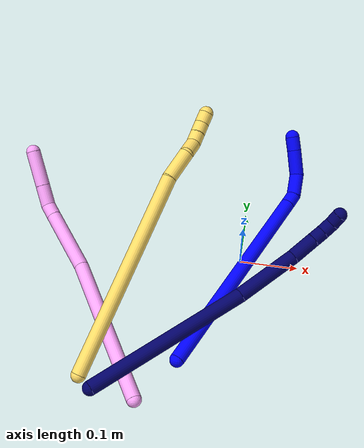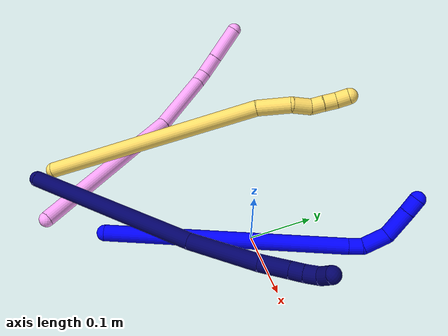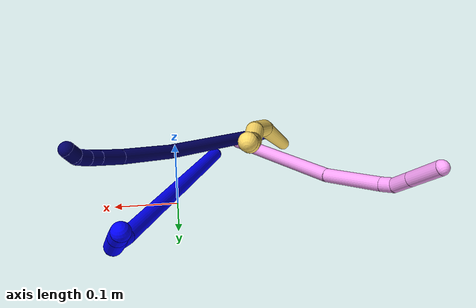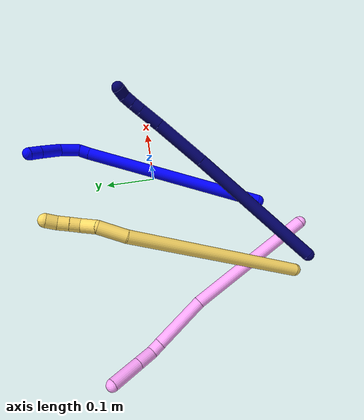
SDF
<sdf version="1.7">
 <world name="default">
  <model name="1">
   <static>0</static>
   <link name="1">
    <collision name="collision-cylinder-e_1_1_4">
     <pose>0.075033 0.143788 0.088297 -1.02009 0.418424 -0.236443</pose>
     <geometry><cylinder><radius>0.0125</radius><length>0.369331</length></cylinder></geometry>
     <surface>
      <friction><ode><mu>1.16</mu><mu2>1.16</mu2><slip1>0</slip1><slip2>0</slip2></ode></friction>
      <contact><ode><kp>1e+06</kp><kd>1</kd><max_vel>0</max_vel><min_depth>0.001</min_depth></ode></contact>
     </surface>
    </collision>
    <visual name="visual-cylinder-e_1_1_4">
     <pose>0.075033 0.143788 0.088297 -1.02009 0.418424 -0.236443</pose>
     <geometry><cylinder><radius>0.0125</radius><length>0.369331</length></cylinder></geometry>
     <material><ambient>0 0 1 1</ambient></material>
    </visual>
    <collision name="collision-cylinder-e_2_4_5">
     <pose>0.15447 0.295183 0.182902 -0.878465 0.419146 -0.199206</pose>
     <geometry><cylinder><radius>0.0125</radius><length>0.021638</length></cylinder></geometry>
     <surface>
      <friction><ode><mu>1.16</mu><mu2>1.16</mu2><slip1>0</slip1><slip2>0</slip2></ode></friction>
      <contact><ode><kp>1e+06</kp><kd>1</kd><max_vel>0</max_vel><min_depth>0.001</min_depth></ode></contact>
     </surface>
    </collision>
    <visual name="visual-cylinder-e_2_4_5">
     <pose>0.15447 0.295183 0.182902 -0.878465 0.419146 -0.199206</pose>
     <geometry><cylinder><radius>0.0125</radius><length>0.021638</length></cylinder></geometry>
     <material><ambient>0 0 1 1</ambient></material>
    </visual>
    <collision name="collision-cylinder-e_3_5_6">
     <pose>0.158737 0.316318 0.203863 -0.745521 -0.006815 0.002665</pose>
     <geometry><cylinder><radius>0.0125</radius><length>0.039886</length></cylinder></geometry>
     <surface>
      <friction><ode><mu>1.16</mu><mu2>1.16</mu2><slip1>0</slip1><slip2>0</slip2></ode></friction>
      <contact><ode><kp>1e+06</kp><kd>1</kd><max_vel>0</max_vel><min_depth>0.001</min_depth></ode></contact>
     </surface>
    </collision>
    <visual name="visual-cylinder-e_3_5_6">
     <pose>0.158737 0.316318 0.203863 -0.745521 -0.006815 0.002665</pose>
     <geometry><cylinder><radius>0.0125</radius><length>0.039886</length></cylinder></geometry>
     <material><ambient>0 0 1 1</ambient></material>
    </visual>
    <collision name="collision-cylinder-e_4_6_7">
     <pose>0.151721 0.337924 0.238417 -0.385568 -0.310004 0.060986</pose>
     <geometry><cylinder><radius>0.0125</radius><length>0.045107</length></cylinder></geometry>
     <surface>
      <friction><ode><mu>1.16</mu><mu2>1.16</mu2><slip1>0</slip1><slip2>0</slip2></ode></friction>
      <contact><ode><kp>1e+06</kp><kd>1</kd><max_vel>0</max_vel><min_depth>0.001</min_depth></ode></contact>
     </surface>
    </collision>
    <visual name="visual-cylinder-e_4_6_7">
     <pose>0.151721 0.337924 0.238417 -0.385568 -0.310004 0.060986</pose>
     <geometry><cylinder><radius>0.0125</radius><length>0.045107</length></cylinder></geometry>
     <material><ambient>0 0 1 1</ambient></material>
    </visual>
    <collision name="collision-cylinder-e_5_7_2">
     <pose>0.140802 0.350246 0.268813 -0.38432 -0.342714 0.067313</pose>
     <geometry><cylinder><radius>0.0125</radius><length>0.024038</length></cylinder></geometry>
     <surface>
      <friction><ode><mu>1.16</mu><mu2>1.16</mu2><slip1>0</slip1><slip2>0</slip2></ode></friction>
      <contact><ode><kp>1e+06</kp><kd>1</kd><max_vel>0</max_vel><min_depth>0.001</min_depth></ode></contact>
     </surface>
    </collision>
    <visual name="visual-cylinder-e_5_7_2">
     <pose>0.140802 0.350246 0.268813 -0.38432 -0.342714 0.067313</pose>
     <geometry><cylinder><radius>0.0125</radius><length>0.024038</length></cylinder></geometry>
     <material><ambient>0 0 1 1</ambient></material>
    </visual>
    <collision name="collision-sphere-2">
     <pose>0.136763 0.35449 0.279307 0 -0 0</pose>
     <geometry><sphere><radius>0.0125</radius></sphere></geometry>
     <surface>
      <friction><ode><mu>1.16</mu><mu2>1.16</mu2><slip1>0</slip1><slip2>0</slip2></ode></friction>
      <contact><ode><kp>1e+06</kp><kd>1</kd><max_vel>0</max_vel><min_depth>0.001</min_depth></ode></contact>
     </surface>
    </collision>
    <visual name="visual-sphere-2">
     <pose>0.136763 0.35449 0.279307 0 -0 0</pose>
     <geometry><sphere><radius>0.0125</radius></sphere></geometry>
     <material><ambient>0 0 1 1</ambient></material>
    </visual>
    <collision name="collision-sphere-7">
     <pose>0.144841 0.346002 0.258319 0 -0 0</pose>
     <geometry><sphere><radius>0.0125</radius></sphere></geometry>
     <surface>
      <friction><ode><mu>1.16</mu><mu2>1.16</mu2><slip1>0</slip1><slip2>0</slip2></ode></friction>
      <contact><ode><kp>1e+06</kp><kd>1</kd><max_vel>0</max_vel><min_depth>0.001</min_depth></ode></contact>
     </surface>
    </collision>
    <visual name="visual-sphere-7">
     <pose>0.144841 0.346002 0.258319 0 -0 0</pose>
     <geometry><sphere><radius>0.0125</radius></sphere></geometry>
     <material><ambient>0 0 1 1</ambient></material>
    </visual>
    <collision name="collision-sphere-6">
     <pose>0.158601 0.329847 0.218515 0 -0 0</pose>
     <geometry><sphere><radius>0.0125</radius></sphere></geometry>
     <surface>
      <friction><ode><mu>1.16</mu><mu2>1.16</mu2><slip1>0</slip1><slip2>0</slip2></ode></friction>
      <contact><ode><kp>1e+06</kp><kd>1</kd><max_vel>0</max_vel><min_depth>0.001</min_depth></ode></contact>
     </surface>
    </collision>
    <visual name="visual-sphere-6">
     <pose>0.158601 0.329847 0.218515 0 -0 0</pose>
     <geometry><sphere><radius>0.0125</radius></sphere></geometry>
     <material><ambient>0 0 1 1</ambient></material>
    </visual>
    <collision name="collision-sphere-5">
     <pose>0.158873 0.30279 0.18921 0 -0 0</pose>
     <geometry><sphere><radius>0.0125</radius></sphere></geometry>
     <surface>
      <friction><ode><mu>1.16</mu><mu2>1.16</mu2><slip1>0</slip1><slip2>0</slip2></ode></friction>
      <contact><ode><kp>1e+06</kp><kd>1</kd><max_vel>0</max_vel><min_depth>0.001</min_depth></ode></contact>
     </surface>
    </collision>
    <visual name="visual-sphere-5">
     <pose>0.158873 0.30279 0.18921 0 -0 0</pose>
     <geometry><sphere><radius>0.0125</radius></sphere></geometry>
     <material><ambient>0 0 1 1</ambient></material>
    </visual>
    <collision name="collision-sphere-1">
     <geometry><sphere><radius>0.0125</radius></sphere></geometry>
     <surface>
      <friction><ode><mu>1.16</mu><mu2>1.16</mu2><slip1>0</slip1><slip2>0</slip2></ode></friction>
      <contact><ode><kp>1e+06</kp><kd>1</kd><max_vel>0</max_vel><min_depth>0.001</min_depth></ode></contact>
     </surface>
    </collision>
    <visual name="visual-sphere-1">
     <geometry><sphere><radius>0.0125</radius></sphere></geometry>
     <material><ambient>0 0 1 1</ambient></material>
    </visual>
    <collision name="collision-sphere-4">
     <pose>0.150067 0.287576 0.176593 0 -0 0</pose>
     <geometry><sphere><radius>0.0125</radius></sphere></geometry>
     <surface>
      <friction><ode><mu>1.16</mu><mu2>1.16</mu2><slip1>0</slip1><slip2>0</slip2></ode></friction>
      <contact><ode><kp>1e+06</kp><kd>1</kd><max_vel>0</max_vel><min_depth>0.001</min_depth></ode></contact>
     </surface>
    </collision>
    <visual name="visual-sphere-4">
     <pose>0.150067 0.287576 0.176593 0 -0 0</pose>
     <geometry><sphere><radius>0.0125</radius></sphere></geometry>
     <material><ambient>0 0 1 1</ambient></material>
    </visual>
    <inertial>
     <pose>0.095229 0.191542 0.123831 0 -0 0</pose>
     <mass>0.5</mass>
     <inertia>
      <ixx>0.002871</ixx>
      <ixy>0</ixy>
      <ixz>0</ixz>
      <iyy>0.001628</iyy>
      <iyz>0</iyz>
      <izz>-0.004977</izz>
     </inertia>
    </inertial>
   </link>
   <pose>-0.078918 -0.209574 0.011946 -0.494642 0.124931 0.002539</pose>
  </model>
  <model name="4">
   <static>0</static>
   <link name="4">
    <collision name="collision-cylinder-e_1_1_4">
     <pose>-0.076999 -0.005274 0.108368 0.048633 -0.6172 -0.015506</pose>
     <geometry><cylinder><radius>0.0125</radius><length>0.266085</length></cylinder></geometry>
     <surface>
      <friction><ode><mu>1.16</mu><mu2>1.16</mu2><slip1>0</slip1><slip2>0</slip2></ode></friction>
      <contact><ode><kp>1e+06</kp><kd>1</kd><max_vel>0</max_vel><min_depth>0.001</min_depth></ode></contact>
     </surface>
    </collision>
    <visual name="visual-cylinder-e_1_1_4">
     <pose>-0.076999 -0.005274 0.108368 0.048633 -0.6172 -0.015506</pose>
     <geometry><cylinder><radius>0.0125</radius><length>0.266085</length></cylinder></geometry>
     <material><ambient>1 0.65098 0.996078 1</ambient></material>
    </visual>
    <collision name="collision-cylinder-e_2_4_5">
     <pose>-0.193689 -0.012283 0.256062 0.044064 -0.789537 -0.018361</pose>
     <geometry><cylinder><radius>0.0125</radius><length>0.111803</length></cylinder></geometry>
     <surface>
      <friction><ode><mu>1.16</mu><mu2>1.16</mu2><slip1>0</slip1><slip2>0</slip2></ode></friction>
      <contact><ode><kp>1e+06</kp><kd>1</kd><max_vel>0</max_vel><min_depth>0.001</min_depth></ode></contact>
     </surface>
    </collision>
    <visual name="visual-cylinder-e_2_4_5">
     <pose>-0.193689 -0.012283 0.256062 0.044064 -0.789537 -0.018361</pose>
     <geometry><cylinder><radius>0.0125</radius><length>0.111803</length></cylinder></geometry>
     <material><ambient>1 0.65098 0.996078 1</ambient></material>
    </visual>
    <collision name="collision-cylinder-e_3_5_6">
     <pose>-0.242052 -0.014981 0.303131 0.123864 -0.838082 -0.055229</pose>
     <geometry><cylinder><radius>0.0125</radius><length>0.023329</length></cylinder></geometry>
     <surface>
      <friction><ode><mu>1.16</mu><mu2>1.16</mu2><slip1>0</slip1><slip2>0</slip2></ode></friction>
      <contact><ode><kp>1e+06</kp><kd>1</kd><max_vel>0</max_vel><min_depth>0.001</min_depth></ode></contact>
     </surface>
    </collision>
    <visual name="visual-cylinder-e_3_5_6">
     <pose>-0.242052 -0.014981 0.303131 0.123864 -0.838082 -0.055229</pose>
     <geometry><cylinder><radius>0.0125</radius><length>0.023329</length></cylinder></geometry>
     <material><ambient>1 0.65098 0.996078 1</ambient></material>
    </visual>
    <collision name="collision-cylinder-e_4_6_7">
     <pose>-0.264781 -0.024219 0.319273 0.777838 -0.872897 -0.377738</pose>
     <geometry><cylinder><radius>0.0125</radius><length>0.036696</length></cylinder></geometry>
     <surface>
      <friction><ode><mu>1.16</mu><mu2>1.16</mu2><slip1>0</slip1><slip2>0</slip2></ode></friction>
      <contact><ode><kp>1e+06</kp><kd>1</kd><max_vel>0</max_vel><min_depth>0.001</min_depth></ode></contact>
     </surface>
    </collision>
    <visual name="visual-cylinder-e_4_6_7">
     <pose>-0.264781 -0.024219 0.319273 0.777838 -0.872897 -0.377738</pose>
     <geometry><cylinder><radius>0.0125</radius><length>0.036696</length></cylinder></geometry>
     <material><ambient>1 0.65098 0.996078 1</ambient></material>
    </visual>
    <collision name="collision-cylinder-e_5_7_2">
     <pose>-0.30264 -0.046511 0.341841 0.780117 -0.873658 -0.379303</pose>
     <geometry><cylinder><radius>0.0125</radius><length>0.062087</length></cylinder></geometry>
     <surface>
      <friction><ode><mu>1.16</mu><mu2>1.16</mu2><slip1>0</slip1><slip2>0</slip2></ode></friction>
      <contact><ode><kp>1e+06</kp><kd>1</kd><max_vel>0</max_vel><min_depth>0.001</min_depth></ode></contact>
     </surface>
    </collision>
    <visual name="visual-cylinder-e_5_7_2">
     <pose>-0.30264 -0.046511 0.341841 0.780117 -0.873658 -0.379303</pose>
     <geometry><cylinder><radius>0.0125</radius><length>0.062087</length></cylinder></geometry>
     <material><ambient>1 0.65098 0.996078 1</ambient></material>
    </visual>
    <collision name="collision-sphere-2">
     <pose>-0.32644 -0.06053 0.356008 0 -0 0</pose>
     <geometry><sphere><radius>0.0125</radius></sphere></geometry>
     <surface>
      <friction><ode><mu>1.16</mu><mu2>1.16</mu2><slip1>0</slip1><slip2>0</slip2></ode></friction>
      <contact><ode><kp>1e+06</kp><kd>1</kd><max_vel>0</max_vel><min_depth>0.001</min_depth></ode></contact>
     </surface>
    </collision>
    <visual name="visual-sphere-2">
     <pose>-0.32644 -0.06053 0.356008 0 -0 0</pose>
     <geometry><sphere><radius>0.0125</radius></sphere></geometry>
     <material><ambient>1 0.65098 0.996078 1</ambient></material>
    </visual>
    <collision name="collision-sphere-7">
     <pose>-0.278839 -0.032493 0.327673 0 -0 0</pose>
     <geometry><sphere><radius>0.0125</radius></sphere></geometry>
     <surface>
      <friction><ode><mu>1.16</mu><mu2>1.16</mu2><slip1>0</slip1><slip2>0</slip2></ode></friction>
      <contact><ode><kp>1e+06</kp><kd>1</kd><max_vel>0</max_vel><min_depth>0.001</min_depth></ode></contact>
     </surface>
    </collision>
    <visual name="visual-sphere-7">
     <pose>-0.278839 -0.032493 0.327673 0 -0 0</pose>
     <geometry><sphere><radius>0.0125</radius></sphere></geometry>
     <material><ambient>1 0.65098 0.996078 1</ambient></material>
    </visual>
    <collision name="collision-sphere-6">
     <pose>-0.250723 -0.015945 0.310873 0 -0 0</pose>
     <geometry><sphere><radius>0.0125</radius></sphere></geometry>
     <surface>
      <friction><ode><mu>1.16</mu><mu2>1.16</mu2><slip1>0</slip1><slip2>0</slip2></ode></friction>
      <contact><ode><kp>1e+06</kp><kd>1</kd><max_vel>0</max_vel><min_depth>0.001</min_depth></ode></contact>
     </surface>
    </collision>
    <visual name="visual-sphere-6">
     <pose>-0.250723 -0.015945 0.310873 0 -0 0</pose>
     <geometry><sphere><radius>0.0125</radius></sphere></geometry>
     <material><ambient>1 0.65098 0.996078 1</ambient></material>
    </visual>
    <collision name="collision-sphere-5">
     <pose>-0.233381 -0.014017 0.295388 0 -0 0</pose>
     <geometry><sphere><radius>0.0125</radius></sphere></geometry>
     <surface>
      <friction><ode><mu>1.16</mu><mu2>1.16</mu2><slip1>0</slip1><slip2>0</slip2></ode></friction>
      <contact><ode><kp>1e+06</kp><kd>1</kd><max_vel>0</max_vel><min_depth>0.001</min_depth></ode></contact>
     </surface>
    </collision>
    <visual name="visual-sphere-5">
     <pose>-0.233381 -0.014017 0.295388 0 -0 0</pose>
     <geometry><sphere><radius>0.0125</radius></sphere></geometry>
     <material><ambient>1 0.65098 0.996078 1</ambient></material>
    </visual>
    <collision name="collision-sphere-1">
     <geometry><sphere><radius>0.0125</radius></sphere></geometry>
     <surface>
      <friction><ode><mu>1.16</mu><mu2>1.16</mu2><slip1>0</slip1><slip2>0</slip2></ode></friction>
      <contact><ode><kp>1e+06</kp><kd>1</kd><max_vel>0</max_vel><min_depth>0.001</min_depth></ode></contact>
     </surface>
    </collision>
    <visual name="visual-sphere-1">
     <geometry><sphere><radius>0.0125</radius></sphere></geometry>
     <material><ambient>1 0.65098 0.996078 1</ambient></material>
    </visual>
    <collision name="collision-sphere-4">
     <pose>-0.153998 -0.010549 0.216736 0 -0 0</pose>
     <geometry><sphere><radius>0.0125</radius></sphere></geometry>
     <surface>
      <friction><ode><mu>1.16</mu><mu2>1.16</mu2><slip1>0</slip1><slip2>0</slip2></ode></friction>
      <contact><ode><kp>1e+06</kp><kd>1</kd><max_vel>0</max_vel><min_depth>0.001</min_depth></ode></contact>
     </surface>
    </collision>
    <visual name="visual-sphere-4">
     <pose>-0.153998 -0.010549 0.216736 0 -0 0</pose>
     <geometry><sphere><radius>0.0125</radius></sphere></geometry>
     <material><ambient>1 0.65098 0.996078 1</ambient></material>
    </visual>
    <inertial>
     <pose>-0.152593 -0.013805 0.194951 0 -0 0</pose>
     <mass>0.5</mass>
     <inertia>
      <ixx>0.001338</ixx>
      <ixy>0</ixy>
      <ixz>0</ixz>
      <iyy>0.001693</iyy>
      <iyz>0</iyz>
      <izz>0.00113</izz>
     </inertia>
    </inertial>
   </link>
   <pose>-0.135562 -0.287977 0.011489 -2.1194 0.594149 -0.248176</pose>
  </model>
  <model name="5">
   <static>0</static>
   <link name="5">
    <collision name="collision-cylinder-e_1_1_4">
     <pose>0.016371 0.110228 -0.138809 -2.47046 0.092101 -0.26275</pose>
     <geometry><cylinder><radius>0.0125</radius><length>0.356012</length></cylinder></geometry>
     <surface>
      <friction><ode><mu>1.16</mu><mu2>1.16</mu2><slip1>0</slip1><slip2>0</slip2></ode></friction>
      <contact><ode><kp>1e+06</kp><kd>1</kd><max_vel>0</max_vel><min_depth>0.001</min_depth></ode></contact>
     </surface>
    </collision>
    <visual name="visual-cylinder-e_1_1_4">
     <pose>0.016371 0.110228 -0.138809 -2.47046 0.092101 -0.26275</pose>
     <geometry><cylinder><radius>0.0125</radius><length>0.356012</length></cylinder></geometry>
     <material><ambient>1 0.858824 0.4 1</ambient></material>
    </visual>
    <collision name="collision-cylinder-e_2_4_5">
     <pose>0.038517 0.233077 -0.30019 -2.63173 0.219681 -0.800682</pose>
     <geometry><cylinder><radius>0.0125</radius><length>0.052995</length></cylinder></geometry>
     <surface>
      <friction><ode><mu>1.16</mu><mu2>1.16</mu2><slip1>0</slip1><slip2>0</slip2></ode></friction>
      <contact><ode><kp>1e+06</kp><kd>1</kd><max_vel>0</max_vel><min_depth>0.001</min_depth></ode></contact>
     </surface>
    </collision>
    <visual name="visual-cylinder-e_2_4_5">
     <pose>0.038517 0.233077 -0.30019 -2.63173 0.219681 -0.800682</pose>
     <geometry><cylinder><radius>0.0125</radius><length>0.052995</length></cylinder></geometry>
     <material><ambient>1 0.858824 0.4 1</ambient></material>
    </visual>
    <collision name="collision-cylinder-e_3_5_6">
     <pose>0.044945 0.246969 -0.337915 -3.05792 0.04297 -0.948504</pose>
     <geometry><cylinder><radius>0.0125</radius><length>0.030442</length></cylinder></geometry>
     <surface>
      <friction><ode><mu>1.16</mu><mu2>1.16</mu2><slip1>0</slip1><slip2>0</slip2></ode></friction>
      <contact><ode><kp>1e+06</kp><kd>1</kd><max_vel>0</max_vel><min_depth>0.001</min_depth></ode></contact>
     </surface>
    </collision>
    <visual name="visual-cylinder-e_3_5_6">
     <pose>0.044945 0.246969 -0.337915 -3.05792 0.04297 -0.948504</pose>
     <geometry><cylinder><radius>0.0125</radius><length>0.030442</length></cylinder></geometry>
     <material><ambient>1 0.858824 0.4 1</ambient></material>
    </visual>
    <collision name="collision-cylinder-e_4_6_7">
     <pose>0.04587 0.253556 -0.361663 -2.58768 0.026806 -0.094236</pose>
     <geometry><cylinder><radius>0.0125</radius><length>0.020218</length></cylinder></geometry>
     <surface>
      <friction><ode><mu>1.16</mu><mu2>1.16</mu2><slip1>0</slip1><slip2>0</slip2></ode></friction>
      <contact><ode><kp>1e+06</kp><kd>1</kd><max_vel>0</max_vel><min_depth>0.001</min_depth></ode></contact>
     </surface>
    </collision>
    <visual name="visual-cylinder-e_4_6_7">
     <pose>0.04587 0.253556 -0.361663 -2.58768 0.026806 -0.094236</pose>
     <geometry><cylinder><radius>0.0125</radius><length>0.020218</length></cylinder></geometry>
     <material><ambient>1 0.858824 0.4 1</ambient></material>
    </visual>
    <collision name="collision-cylinder-e_5_7_8">
     <pose>0.046236 0.263699 -0.379066 -2.64027 0.009485 -0.03704</pose>
     <geometry><cylinder><radius>0.0125</radius><length>0.020089</length></cylinder></geometry>
     <surface>
      <friction><ode><mu>1.16</mu><mu2>1.16</mu2><slip1>0</slip1><slip2>0</slip2></ode></friction>
      <contact><ode><kp>1e+06</kp><kd>1</kd><max_vel>0</max_vel><min_depth>0.001</min_depth></ode></contact>
     </surface>
    </collision>
    <visual name="visual-cylinder-e_5_7_8">
     <pose>0.046236 0.263699 -0.379066 -2.64027 0.009485 -0.03704</pose>
     <geometry><cylinder><radius>0.0125</radius><length>0.020089</length></cylinder></geometry>
     <material><ambient>1 0.858824 0.4 1</ambient></material>
    </visual>
    <collision name="collision-cylinder-e_6_8_2">
     <pose>0.047175 0.275075 -0.395545 -2.43486 0.083393 -0.225266</pose>
     <geometry><cylinder><radius>0.0125</radius><length>0.020243</length></cylinder></geometry>
     <surface>
      <friction><ode><mu>1.16</mu><mu2>1.16</mu2><slip1>0</slip1><slip2>0</slip2></ode></friction>
      <contact><ode><kp>1e+06</kp><kd>1</kd><max_vel>0</max_vel><min_depth>0.001</min_depth></ode></contact>
     </surface>
    </collision>
    <visual name="visual-cylinder-e_6_8_2">
     <pose>0.047175 0.275075 -0.395545 -2.43486 0.083393 -0.225266</pose>
     <geometry><cylinder><radius>0.0125</radius><length>0.020243</length></cylinder></geometry>
     <material><ambient>1 0.858824 0.4 1</ambient></material>
    </visual>
    <collision name="collision-sphere-2">
     <pose>0.048018 0.281625 -0.403216 0 -0 0</pose>
     <geometry><sphere><radius>0.0125</radius></sphere></geometry>
     <surface>
      <friction><ode><mu>1.16</mu><mu2>1.16</mu2><slip1>0</slip1><slip2>0</slip2></ode></friction>
      <contact><ode><kp>1e+06</kp><kd>1</kd><max_vel>0</max_vel><min_depth>0.001</min_depth></ode></contact>
     </surface>
    </collision>
    <visual name="visual-sphere-2">
     <pose>0.048018 0.281625 -0.403216 0 -0 0</pose>
     <geometry><sphere><radius>0.0125</radius></sphere></geometry>
     <material><ambient>1 0.858824 0.4 1</ambient></material>
    </visual>
    <collision name="collision-sphere-4">
     <pose>0.032743 0.220455 -0.277618 0 -0 0</pose>
     <geometry><sphere><radius>0.0125</radius></sphere></geometry>
     <surface>
      <friction><ode><mu>1.16</mu><mu2>1.16</mu2><slip1>0</slip1><slip2>0</slip2></ode></friction>
      <contact><ode><kp>1e+06</kp><kd>1</kd><max_vel>0</max_vel><min_depth>0.001</min_depth></ode></contact>
     </surface>
    </collision>
    <visual name="visual-sphere-4">
     <pose>0.032743 0.220455 -0.277618 0 -0 0</pose>
     <geometry><sphere><radius>0.0125</radius></sphere></geometry>
     <material><ambient>1 0.858824 0.4 1</ambient></material>
    </visual>
    <collision name="collision-sphere-1">
     <geometry><sphere><radius>0.0125</radius></sphere></geometry>
     <surface>
      <friction><ode><mu>1.16</mu><mu2>1.16</mu2><slip1>0</slip1><slip2>0</slip2></ode></friction>
      <contact><ode><kp>1e+06</kp><kd>1</kd><max_vel>0</max_vel><min_depth>0.001</min_depth></ode></contact>
     </surface>
    </collision>
    <visual name="visual-sphere-1">
     <geometry><sphere><radius>0.0125</radius></sphere></geometry>
     <material><ambient>1 0.858824 0.4 1</ambient></material>
    </visual>
    <collision name="collision-sphere-8">
     <pose>0.046331 0.268526 -0.387874 0 -0 0</pose>
     <geometry><sphere><radius>0.0125</radius></sphere></geometry>
     <surface>
      <friction><ode><mu>1.16</mu><mu2>1.16</mu2><slip1>0</slip1><slip2>0</slip2></ode></friction>
      <contact><ode><kp>1e+06</kp><kd>1</kd><max_vel>0</max_vel><min_depth>0.001</min_depth></ode></contact>
     </surface>
    </collision>
    <visual name="visual-sphere-8">
     <pose>0.046331 0.268526 -0.387874 0 -0 0</pose>
     <geometry><sphere><radius>0.0125</radius></sphere></geometry>
     <material><ambient>1 0.858824 0.4 1</ambient></material>
    </visual>
    <collision name="collision-sphere-5">
     <pose>0.044291 0.245698 -0.322761 0 -0 0</pose>
     <geometry><sphere><radius>0.0125</radius></sphere></geometry>
     <surface>
      <friction><ode><mu>1.16</mu><mu2>1.16</mu2><slip1>0</slip1><slip2>0</slip2></ode></friction>
      <contact><ode><kp>1e+06</kp><kd>1</kd><max_vel>0</max_vel><min_depth>0.001</min_depth></ode></contact>
     </surface>
    </collision>
    <visual name="visual-sphere-5">
     <pose>0.044291 0.245698 -0.322761 0 -0 0</pose>
     <geometry><sphere><radius>0.0125</radius></sphere></geometry>
     <material><ambient>1 0.858824 0.4 1</ambient></material>
    </visual>
    <collision name="collision-sphere-6">
     <pose>0.045599 0.24824 -0.353069 0 -0 0</pose>
     <geometry><sphere><radius>0.0125</radius></sphere></geometry>
     <surface>
      <friction><ode><mu>1.16</mu><mu2>1.16</mu2><slip1>0</slip1><slip2>0</slip2></ode></friction>
      <contact><ode><kp>1e+06</kp><kd>1</kd><max_vel>0</max_vel><min_depth>0.001</min_depth></ode></contact>
     </surface>
    </collision>
    <visual name="visual-sphere-6">
     <pose>0.045599 0.24824 -0.353069 0 -0 0</pose>
     <geometry><sphere><radius>0.0125</radius></sphere></geometry>
     <material><ambient>1 0.858824 0.4 1</ambient></material>
    </visual>
    <collision name="collision-sphere-7">
     <pose>0.046141 0.258871 -0.370257 0 -0 0</pose>
     <geometry><sphere><radius>0.0125</radius></sphere></geometry>
     <surface>
      <friction><ode><mu>1.16</mu><mu2>1.16</mu2><slip1>0</slip1><slip2>0</slip2></ode></friction>
      <contact><ode><kp>1e+06</kp><kd>1</kd><max_vel>0</max_vel><min_depth>0.001</min_depth></ode></contact>
     </surface>
    </collision>
    <visual name="visual-sphere-7">
     <pose>0.046141 0.258871 -0.370257 0 -0 0</pose>
     <geometry><sphere><radius>0.0125</radius></sphere></geometry>
     <material><ambient>1 0.858824 0.4 1</ambient></material>
    </visual>
    <inertial>
     <pose>0.024098 0.15021 -0.197095 0 -0 0</pose>
     <mass>0.5</mass>
     <inertia>
      <ixx>0.002659</ixx>
      <ixy>0</ixy>
      <ixz>0</ixz>
      <iyy>-0.003779</iyy>
      <iyz>0</iyz>
      <izz>-0.002729</izz>
     </inertia>
    </inertial>
   </link>
   <pose>-0.230707 -0.259853 0.011495 1.26168 -0.035567 -0.213864</pose>
  </model>
  <model name="7">
   <static>0</static>
   <link name="7">
    <collision name="collision-cylinder-e_1_1_4">
     <pose>0.036162 0.127991 0.050077 -1.19785 0.25728 -0.176127</pose>
     <geometry><cylinder><radius>0.0125</radius><length>0.284233</length></cylinder></geometry>
     <surface>
      <friction><ode><mu>1.16</mu><mu2>1.16</mu2><slip1>0</slip1><slip2>0</slip2></ode></friction>
      <contact><ode><kp>1e+06</kp><kd>1</kd><max_vel>0</max_vel><min_depth>0.001</min_depth></ode></contact>
     </surface>
    </collision>
    <visual name="visual-cylinder-e_1_1_4">
     <pose>0.036162 0.127991 0.050077 -1.19785 0.25728 -0.176127</pose>
     <geometry><cylinder><radius>0.0125</radius><length>0.284233</length></cylinder></geometry>
     <material><ambient>0.003922 0 0.403922 1</ambient></material>
    </visual>
    <collision name="collision-cylinder-e_2_4_5">
     <pose>0.088236 0.302853 0.123504 -1.10863 0.295008 -0.183448</pose>
     <geometry><cylinder><radius>0.0125</radius><length>0.10946</length></cylinder></geometry>
     <surface>
      <friction><ode><mu>1.16</mu><mu2>1.16</mu2><slip1>0</slip1><slip2>0</slip2></ode></friction>
      <contact><ode><kp>1e+06</kp><kd>1</kd><max_vel>0</max_vel><min_depth>0.001</min_depth></ode></contact>
     </surface>
    </collision>
    <visual name="visual-cylinder-e_2_4_5">
     <pose>0.088236 0.302853 0.123504 -1.10863 0.295008 -0.183448</pose>
     <geometry><cylinder><radius>0.0125</radius><length>0.10946</length></cylinder></geometry>
     <material><ambient>0.003922 0 0.403922 1</ambient></material>
    </visual>
    <collision name="collision-cylinder-e_3_5_6">
     <pose>0.111123 0.367823 0.157812 -1.02633 0.318416 -0.180474</pose>
     <geometry><cylinder><radius>0.0125</radius><length>0.044554</length></cylinder></geometry>
     <surface>
      <friction><ode><mu>1.16</mu><mu2>1.16</mu2><slip1>0</slip1><slip2>0</slip2></ode></friction>
      <contact><ode><kp>1e+06</kp><kd>1</kd><max_vel>0</max_vel><min_depth>0.001</min_depth></ode></contact>
     </surface>
    </collision>
    <visual name="visual-cylinder-e_3_5_6">
     <pose>0.111123 0.367823 0.157812 -1.02633 0.318416 -0.180474</pose>
     <geometry><cylinder><radius>0.0125</radius><length>0.044554</length></cylinder></geometry>
     <material><ambient>0.003922 0 0.403922 1</ambient></material>
    </visual>
    <collision name="collision-cylinder-e_4_6_7">
     <pose>0.121294 0.394201 0.173687 -1.03489 0.320581 -0.183529</pose>
     <geometry><cylinder><radius>0.0125</radius><length>0.020294</length></cylinder></geometry>
     <surface>
      <friction><ode><mu>1.16</mu><mu2>1.16</mu2><slip1>0</slip1><slip2>0</slip2></ode></friction>
      <contact><ode><kp>1e+06</kp><kd>1</kd><max_vel>0</max_vel><min_depth>0.001</min_depth></ode></contact>
     </surface>
    </collision>
    <visual name="visual-cylinder-e_4_6_7">
     <pose>0.121294 0.394201 0.173687 -1.03489 0.320581 -0.183529</pose>
     <geometry><cylinder><radius>0.0125</radius><length>0.020294</length></cylinder></geometry>
     <material><ambient>0.003922 0 0.403922 1</ambient></material>
    </visual>
    <collision name="collision-cylinder-e_5_7_8">
     <pose>0.128663 0.410548 0.184316 -0.954708 0.39937 -0.208605</pose>
     <geometry><cylinder><radius>0.0125</radius><length>0.021457</length></cylinder></geometry>
     <surface>
      <friction><ode><mu>1.16</mu><mu2>1.16</mu2><slip1>0</slip1><slip2>0</slip2></ode></friction>
      <contact><ode><kp>1e+06</kp><kd>1</kd><max_vel>0</max_vel><min_depth>0.001</min_depth></ode></contact>
     </surface>
    </collision>
    <visual name="visual-cylinder-e_5_7_8">
     <pose>0.128663 0.410548 0.184316 -0.954708 0.39937 -0.208605</pose>
     <geometry><cylinder><radius>0.0125</radius><length>0.021457</length></cylinder></geometry>
     <material><ambient>0.003922 0 0.403922 1</ambient></material>
    </visual>
    <collision name="collision-cylinder-e_6_8_2">
     <pose>0.139907 0.422617 0.195858 -0.601581 0.785407 -0.255583</pose>
     <geometry><cylinder><radius>0.0125</radius><length>0.020003</length></cylinder></geometry>
     <surface>
      <friction><ode><mu>1.16</mu><mu2>1.16</mu2><slip1>0</slip1><slip2>0</slip2></ode></friction>
      <contact><ode><kp>1e+06</kp><kd>1</kd><max_vel>0</max_vel><min_depth>0.001</min_depth></ode></contact>
     </surface>
    </collision>
    <visual name="visual-cylinder-e_6_8_2">
     <pose>0.139907 0.422617 0.195858 -0.601581 0.785407 -0.255583</pose>
     <geometry><cylinder><radius>0.0125</radius><length>0.020003</length></cylinder></geometry>
     <material><ambient>0.003922 0 0.403922 1</ambient></material>
    </visual>
    <collision name="collision-sphere-2">
     <pose>0.146979 0.42662 0.201689 0 -0 0</pose>
     <geometry><sphere><radius>0.0125</radius></sphere></geometry>
     <surface>
      <friction><ode><mu>1.16</mu><mu2>1.16</mu2><slip1>0</slip1><slip2>0</slip2></ode></friction>
      <contact><ode><kp>1e+06</kp><kd>1</kd><max_vel>0</max_vel><min_depth>0.001</min_depth></ode></contact>
     </surface>
    </collision>
    <visual name="visual-sphere-2">
     <pose>0.146979 0.42662 0.201689 0 -0 0</pose>
     <geometry><sphere><radius>0.0125</radius></sphere></geometry>
     <material><ambient>0.003922 0 0.403922 1</ambient></material>
    </visual>
    <collision name="collision-sphere-4">
     <pose>0.072323 0.255982 0.100155 0 -0 0</pose>
     <geometry><sphere><radius>0.0125</radius></sphere></geometry>
     <surface>
      <friction><ode><mu>1.16</mu><mu2>1.16</mu2><slip1>0</slip1><slip2>0</slip2></ode></friction>
      <contact><ode><kp>1e+06</kp><kd>1</kd><max_vel>0</max_vel><min_depth>0.001</min_depth></ode></contact>
     </surface>
    </collision>
    <visual name="visual-sphere-4">
     <pose>0.072323 0.255982 0.100155 0 -0 0</pose>
     <geometry><sphere><radius>0.0125</radius></sphere></geometry>
     <material><ambient>0.003922 0 0.403922 1</ambient></material>
    </visual>
    <collision name="collision-sphere-1">
     <geometry><sphere><radius>0.0125</radius></sphere></geometry>
     <surface>
      <friction><ode><mu>1.16</mu><mu2>1.16</mu2><slip1>0</slip1><slip2>0</slip2></ode></friction>
      <contact><ode><kp>1e+06</kp><kd>1</kd><max_vel>0</max_vel><min_depth>0.001</min_depth></ode></contact>
     </surface>
    </collision>
    <visual name="visual-sphere-1">
     <geometry><sphere><radius>0.0125</radius></sphere></geometry>
     <material><ambient>0.003922 0 0.403922 1</ambient></material>
    </visual>
    <collision name="collision-sphere-8">
     <pose>0.132835 0.418615 0.190028 0 -0 0</pose>
     <geometry><sphere><radius>0.0125</radius></sphere></geometry>
     <surface>
      <friction><ode><mu>1.16</mu><mu2>1.16</mu2><slip1>0</slip1><slip2>0</slip2></ode></friction>
      <contact><ode><kp>1e+06</kp><kd>1</kd><max_vel>0</max_vel><min_depth>0.001</min_depth></ode></contact>
     </surface>
    </collision>
    <visual name="visual-sphere-8">
     <pose>0.132835 0.418615 0.190028 0 -0 0</pose>
     <geometry><sphere><radius>0.0125</radius></sphere></geometry>
     <material><ambient>0.003922 0 0.403922 1</ambient></material>
    </visual>
    <collision name="collision-sphere-5">
     <pose>0.104149 0.349725 0.146853 0 -0 0</pose>
     <geometry><sphere><radius>0.0125</radius></sphere></geometry>
     <surface>
      <friction><ode><mu>1.16</mu><mu2>1.16</mu2><slip1>0</slip1><slip2>0</slip2></ode></friction>
      <contact><ode><kp>1e+06</kp><kd>1</kd><max_vel>0</max_vel><min_depth>0.001</min_depth></ode></contact>
     </surface>
    </collision>
    <visual name="visual-sphere-5">
     <pose>0.104149 0.349725 0.146853 0 -0 0</pose>
     <geometry><sphere><radius>0.0125</radius></sphere></geometry>
     <material><ambient>0.003922 0 0.403922 1</ambient></material>
    </visual>
    <collision name="collision-sphere-6">
     <pose>0.118097 0.385921 0.16877 0 -0 0</pose>
     <geometry><sphere><radius>0.0125</radius></sphere></geometry>
     <surface>
      <friction><ode><mu>1.16</mu><mu2>1.16</mu2><slip1>0</slip1><slip2>0</slip2></ode></friction>
      <contact><ode><kp>1e+06</kp><kd>1</kd><max_vel>0</max_vel><min_depth>0.001</min_depth></ode></contact>
     </surface>
    </collision>
    <visual name="visual-sphere-6">
     <pose>0.118097 0.385921 0.16877 0 -0 0</pose>
     <geometry><sphere><radius>0.0125</radius></sphere></geometry>
     <material><ambient>0.003922 0 0.403922 1</ambient></material>
    </visual>
    <collision name="collision-sphere-7">
     <pose>0.124492 0.402481 0.178605 0 -0 0</pose>
     <geometry><sphere><radius>0.0125</radius></sphere></geometry>
     <surface>
      <friction><ode><mu>1.16</mu><mu2>1.16</mu2><slip1>0</slip1><slip2>0</slip2></ode></friction>
      <contact><ode><kp>1e+06</kp><kd>1</kd><max_vel>0</max_vel><min_depth>0.001</min_depth></ode></contact>
     </surface>
    </collision>
    <visual name="visual-sphere-7">
     <pose>0.124492 0.402481 0.178605 0 -0 0</pose>
     <geometry><sphere><radius>0.0125</radius></sphere></geometry>
     <material><ambient>0.003922 0 0.403922 1</ambient></material>
    </visual>
    <inertial>
     <pose>0.065817 0.22236 0.092362 0 -0 0</pose>
     <mass>0.5</mass>
     <inertia>
      <ixx>0.001615</ixx>
      <ixy>0</ixy>
      <ixz>0</ixz>
      <iyy>0.000519</iyy>
      <iyz>0</iyz>
      <izz>-0.002353</izz>
     </inertia>
    </inertial>
   </link>
   <pose>-0.204659 -0.286923 0.029843 -0.55132 -0.907852 -0.556409</pose>
  </model>
 </world>
</sdf>
